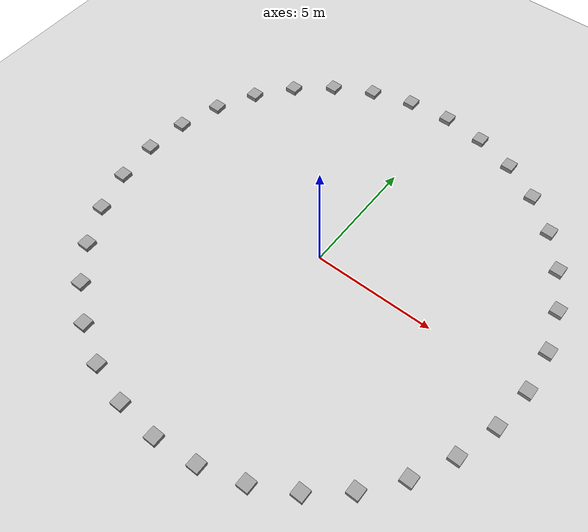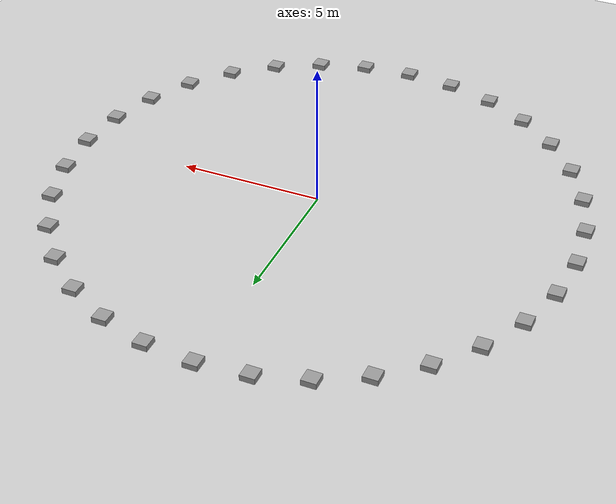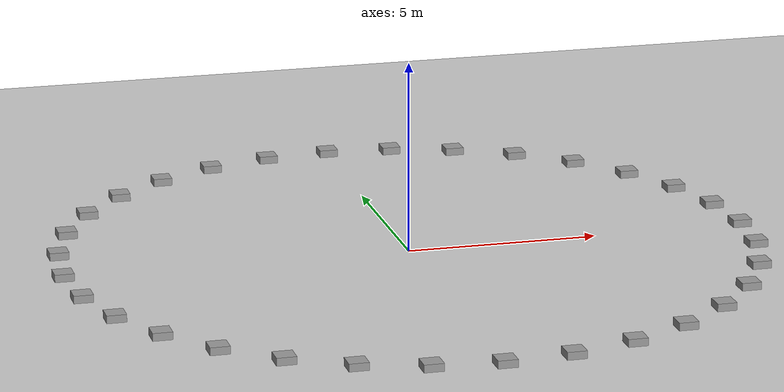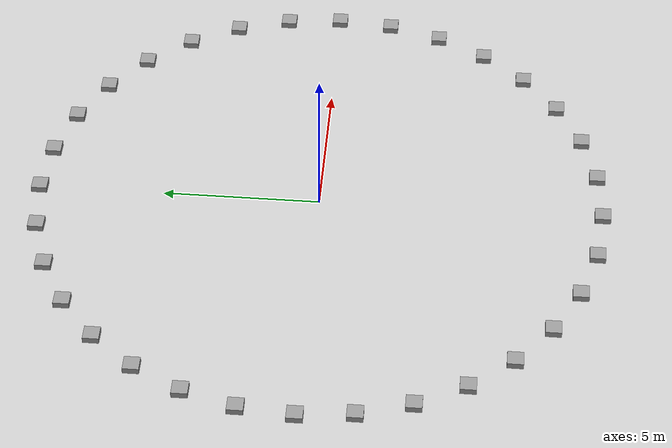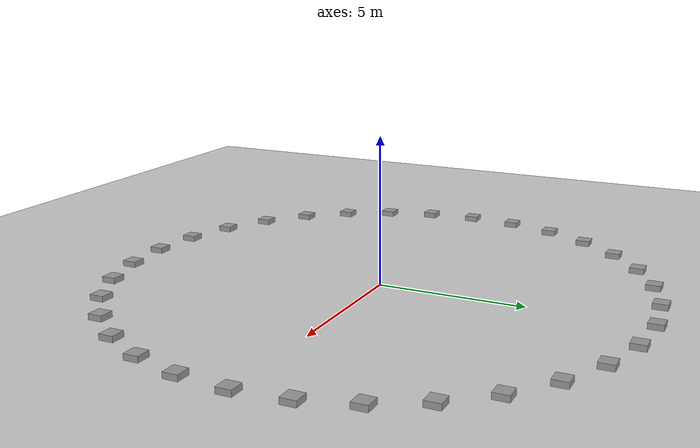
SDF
<?xml version="1.0" ?>
<!-- this file was generated using embedded ruby -->
<sdf version='1.6'>
  <world name='default'>
    <include>
      <uri>model://sun</uri>
    </include>
    <include>
      <uri>model://ground_plane</uri>
    </include>
    <physics type="ode">
      <ode>
        <solver>
          <type>quick</type>
          <iters>50</iters>
          <friction_model>cone_model</friction_model>
        </solver>
      </ode>
    </physics>

    <model name='box_0'>
      <pose>9.0 0.0 0.1 0 -0 0</pose>
      <link name='link_1'>
        <inertial>
          <mass>1</mass>
          <inertia>
            <ixx>0.02416666666666667</ixx>
            <ixy>0</ixy>
            <ixz>0</ixz>
            <iyy>0.02416666666666667</iyy>
            <iyz>0</iyz>
            <izz>0.041666666666666664</izz>
          </inertia>
        </inertial>
        <collision name='collision'>
          <geometry>
            <box>
              <size>0.5 0.5 0.2</size>
            </box>
          </geometry>
          <surface>
            <friction>
              <ode>
                <mu>0.3</mu>
                <mu2>0.3</mu2>
              </ode>
            </friction>
          </surface>
        </collision>
        <visual name='visual'>
          <geometry>
            <box>
              <size>0.5 0.5 0.2</size>
            </box>
          </geometry>
          <material>
            <script>
              <name>Gazebo/Grey</name>
              <uri>file://media/materials/scripts/gazebo.material</uri>
            </script>
          </material>
        </visual>
      </link>
      <plugin name="radial_velocity" filename="libInitialVelocityPlugin.so">
        <linear>9.0 0.0 0</linear>
        <angular>0 0 0</angular>
      </plugin>
    </model>

    <model name='box_1'>
      <pose>8.827067523629074 1.7558128981451542 0.1 0 -0 0</pose>
      <link name='link_1'>
        <inertial>
          <mass>1</mass>
          <inertia>
            <ixx>0.02416666666666667</ixx>
            <ixy>0</ixy>
            <ixz>0</ixz>
            <iyy>0.02416666666666667</iyy>
            <iyz>0</iyz>
            <izz>0.041666666666666664</izz>
          </inertia>
        </inertial>
        <collision name='collision'>
          <geometry>
            <box>
              <size>0.5 0.5 0.2</size>
            </box>
          </geometry>
          <surface>
            <friction>
              <ode>
                <mu>0.3</mu>
                <mu2>0.3</mu2>
              </ode>
            </friction>
          </surface>
        </collision>
        <visual name='visual'>
          <geometry>
            <box>
              <size>0.5 0.5 0.2</size>
            </box>
          </geometry>
          <material>
            <script>
              <name>Gazebo/Grey</name>
              <uri>file://media/materials/scripts/gazebo.material</uri>
            </script>
          </material>
        </visual>
      </link>
      <plugin name="radial_velocity" filename="libInitialVelocityPlugin.so">
        <linear>8.827067523629074 1.7558128981451542 0</linear>
        <angular>0 0 0</angular>
      </plugin>
    </model>

    <model name='box_2'>
      <pose>8.31491579260158 3.444150891285808 0.1 0 -0 0</pose>
      <link name='link_1'>
        <inertial>
          <mass>1</mass>
          <inertia>
            <ixx>0.02416666666666667</ixx>
            <ixy>0</ixy>
            <ixz>0</ixz>
            <iyy>0.02416666666666667</iyy>
            <iyz>0</iyz>
            <izz>0.041666666666666664</izz>
          </inertia>
        </inertial>
        <collision name='collision'>
          <geometry>
            <box>
              <size>0.5 0.5 0.2</size>
            </box>
          </geometry>
          <surface>
            <friction>
              <ode>
                <mu>0.3</mu>
                <mu2>0.3</mu2>
              </ode>
            </friction>
          </surface>
        </collision>
        <visual name='visual'>
          <geometry>
            <box>
              <size>0.5 0.5 0.2</size>
            </box>
          </geometry>
          <material>
            <script>
              <name>Gazebo/Grey</name>
              <uri>file://media/materials/scripts/gazebo.material</uri>
            </script>
          </material>
        </visual>
      </link>
      <plugin name="radial_velocity" filename="libInitialVelocityPlugin.so">
        <linear>8.31491579260158 3.444150891285808 0</linear>
        <angular>0 0 0</angular>
      </plugin>
    </model>

    <model name='box_3'>
      <pose>7.483226510722907 5.00013209717642 0.1 0 -0 0</pose>
      <link name='link_1'>
        <inertial>
          <mass>1</mass>
          <inertia>
            <ixx>0.02416666666666667</ixx>
            <ixy>0</ixy>
            <ixz>0</ixz>
            <iyy>0.02416666666666667</iyy>
            <iyz>0</iyz>
            <izz>0.041666666666666664</izz>
          </inertia>
        </inertial>
        <collision name='collision'>
          <geometry>
            <box>
              <size>0.5 0.5 0.2</size>
            </box>
          </geometry>
          <surface>
            <friction>
              <ode>
                <mu>0.3</mu>
                <mu2>0.3</mu2>
              </ode>
            </friction>
          </surface>
        </collision>
        <visual name='visual'>
          <geometry>
            <box>
              <size>0.5 0.5 0.2</size>
            </box>
          </geometry>
          <material>
            <script>
              <name>Gazebo/Grey</name>
              <uri>file://media/materials/scripts/gazebo.material</uri>
            </script>
          </material>
        </visual>
      </link>
      <plugin name="radial_velocity" filename="libInitialVelocityPlugin.so">
        <linear>7.483226510722907 5.00013209717642 0</linear>
        <angular>0 0 0</angular>
      </plugin>
    </model>

    <model name='box_4'>
      <pose>6.3639610306789285 6.363961030678928 0.1 0 -0 0</pose>
      <link name='link_1'>
        <inertial>
          <mass>1</mass>
          <inertia>
            <ixx>0.02416666666666667</ixx>
            <ixy>0</ixy>
            <ixz>0</ixz>
            <iyy>0.02416666666666667</iyy>
            <iyz>0</iyz>
            <izz>0.041666666666666664</izz>
          </inertia>
        </inertial>
        <collision name='collision'>
          <geometry>
            <box>
              <size>0.5 0.5 0.2</size>
            </box>
          </geometry>
          <surface>
            <friction>
              <ode>
                <mu>0.3</mu>
                <mu2>0.3</mu2>
              </ode>
            </friction>
          </surface>
        </collision>
        <visual name='visual'>
          <geometry>
            <box>
              <size>0.5 0.5 0.2</size>
            </box>
          </geometry>
          <material>
            <script>
              <name>Gazebo/Grey</name>
              <uri>file://media/materials/scripts/gazebo.material</uri>
            </script>
          </material>
        </visual>
      </link>
      <plugin name="radial_velocity" filename="libInitialVelocityPlugin.so">
        <linear>6.3639610306789285 6.363961030678928 0</linear>
        <angular>0 0 0</angular>
      </plugin>
    </model>

    <model name='box_5'>
      <pose>5.0001320971764205 7.483226510722907 0.1 0 -0 0</pose>
      <link name='link_1'>
        <inertial>
          <mass>1</mass>
          <inertia>
            <ixx>0.02416666666666667</ixx>
            <ixy>0</ixy>
            <ixz>0</ixz>
            <iyy>0.02416666666666667</iyy>
            <iyz>0</iyz>
            <izz>0.041666666666666664</izz>
          </inertia>
        </inertial>
        <collision name='collision'>
          <geometry>
            <box>
              <size>0.5 0.5 0.2</size>
            </box>
          </geometry>
          <surface>
            <friction>
              <ode>
                <mu>0.3</mu>
                <mu2>0.3</mu2>
              </ode>
            </friction>
          </surface>
        </collision>
        <visual name='visual'>
          <geometry>
            <box>
              <size>0.5 0.5 0.2</size>
            </box>
          </geometry>
          <material>
            <script>
              <name>Gazebo/Grey</name>
              <uri>file://media/materials/scripts/gazebo.material</uri>
            </script>
          </material>
        </visual>
      </link>
      <plugin name="radial_velocity" filename="libInitialVelocityPlugin.so">
        <linear>5.0001320971764205 7.483226510722907 0</linear>
        <angular>0 0 0</angular>
      </plugin>
    </model>

    <model name='box_6'>
      <pose>3.4441508912858083 8.31491579260158 0.1 0 -0 0</pose>
      <link name='link_1'>
        <inertial>
          <mass>1</mass>
          <inertia>
            <ixx>0.02416666666666667</ixx>
            <ixy>0</ixy>
            <ixz>0</ixz>
            <iyy>0.02416666666666667</iyy>
            <iyz>0</iyz>
            <izz>0.041666666666666664</izz>
          </inertia>
        </inertial>
        <collision name='collision'>
          <geometry>
            <box>
              <size>0.5 0.5 0.2</size>
            </box>
          </geometry>
          <surface>
            <friction>
              <ode>
                <mu>0.3</mu>
                <mu2>0.3</mu2>
              </ode>
            </friction>
          </surface>
        </collision>
        <visual name='visual'>
          <geometry>
            <box>
              <size>0.5 0.5 0.2</size>
            </box>
          </geometry>
          <material>
            <script>
              <name>Gazebo/Grey</name>
              <uri>file://media/materials/scripts/gazebo.material</uri>
            </script>
          </material>
        </visual>
      </link>
      <plugin name="radial_velocity" filename="libInitialVelocityPlugin.so">
        <linear>3.4441508912858083 8.31491579260158 0</linear>
        <angular>0 0 0</angular>
      </plugin>
    </model>

    <model name='box_7'>
      <pose>1.755812898145155 8.827067523629074 0.1 0 -0 0</pose>
      <link name='link_1'>
        <inertial>
          <mass>1</mass>
          <inertia>
            <ixx>0.02416666666666667</ixx>
            <ixy>0</ixy>
            <ixz>0</ixz>
            <iyy>0.02416666666666667</iyy>
            <iyz>0</iyz>
            <izz>0.041666666666666664</izz>
          </inertia>
        </inertial>
        <collision name='collision'>
          <geometry>
            <box>
              <size>0.5 0.5 0.2</size>
            </box>
          </geometry>
          <surface>
            <friction>
              <ode>
                <mu>0.3</mu>
                <mu2>0.3</mu2>
              </ode>
            </friction>
          </surface>
        </collision>
        <visual name='visual'>
          <geometry>
            <box>
              <size>0.5 0.5 0.2</size>
            </box>
          </geometry>
          <material>
            <script>
              <name>Gazebo/Grey</name>
              <uri>file://media/materials/scripts/gazebo.material</uri>
            </script>
          </material>
        </visual>
      </link>
      <plugin name="radial_velocity" filename="libInitialVelocityPlugin.so">
        <linear>1.755812898145155 8.827067523629074 0</linear>
        <angular>0 0 0</angular>
      </plugin>
    </model>

    <model name='box_8'>
      <pose>5.51091059616309e-16 9.0 0.1 0 -0 0</pose>
      <link name='link_1'>
        <inertial>
          <mass>1</mass>
          <inertia>
            <ixx>0.02416666666666667</ixx>
            <ixy>0</ixy>
            <ixz>0</ixz>
            <iyy>0.02416666666666667</iyy>
            <iyz>0</iyz>
            <izz>0.041666666666666664</izz>
          </inertia>
        </inertial>
        <collision name='collision'>
          <geometry>
            <box>
              <size>0.5 0.5 0.2</size>
            </box>
          </geometry>
          <surface>
            <friction>
              <ode>
                <mu>0.3</mu>
                <mu2>0.3</mu2>
              </ode>
            </friction>
          </surface>
        </collision>
        <visual name='visual'>
          <geometry>
            <box>
              <size>0.5 0.5 0.2</size>
            </box>
          </geometry>
          <material>
            <script>
              <name>Gazebo/Grey</name>
              <uri>file://media/materials/scripts/gazebo.material</uri>
            </script>
          </material>
        </visual>
      </link>
      <plugin name="radial_velocity" filename="libInitialVelocityPlugin.so">
        <linear>5.51091059616309e-16 9.0 0</linear>
        <angular>0 0 0</angular>
      </plugin>
    </model>

    <model name='box_9'>
      <pose>-1.7558128981451537 8.827067523629074 0.1 0 -0 0</pose>
      <link name='link_1'>
        <inertial>
          <mass>1</mass>
          <inertia>
            <ixx>0.02416666666666667</ixx>
            <ixy>0</ixy>
            <ixz>0</ixz>
            <iyy>0.02416666666666667</iyy>
            <iyz>0</iyz>
            <izz>0.041666666666666664</izz>
          </inertia>
        </inertial>
        <collision name='collision'>
          <geometry>
            <box>
              <size>0.5 0.5 0.2</size>
            </box>
          </geometry>
          <surface>
            <friction>
              <ode>
                <mu>0.3</mu>
                <mu2>0.3</mu2>
              </ode>
            </friction>
          </surface>
        </collision>
        <visual name='visual'>
          <geometry>
            <box>
              <size>0.5 0.5 0.2</size>
            </box>
          </geometry>
          <material>
            <script>
              <name>Gazebo/Grey</name>
              <uri>file://media/materials/scripts/gazebo.material</uri>
            </script>
          </material>
        </visual>
      </link>
      <plugin name="radial_velocity" filename="libInitialVelocityPlugin.so">
        <linear>-1.7558128981451537 8.827067523629074 0</linear>
        <angular>0 0 0</angular>
      </plugin>
    </model>

    <model name='box_10'>
      <pose>-3.4441508912858074 8.31491579260158 0.1 0 -0 0</pose>
      <link name='link_1'>
        <inertial>
          <mass>1</mass>
          <inertia>
            <ixx>0.02416666666666667</ixx>
            <ixy>0</ixy>
            <ixz>0</ixz>
            <iyy>0.02416666666666667</iyy>
            <iyz>0</iyz>
            <izz>0.041666666666666664</izz>
          </inertia>
        </inertial>
        <collision name='collision'>
          <geometry>
            <box>
              <size>0.5 0.5 0.2</size>
            </box>
          </geometry>
          <surface>
            <friction>
              <ode>
                <mu>0.3</mu>
                <mu2>0.3</mu2>
              </ode>
            </friction>
          </surface>
        </collision>
        <visual name='visual'>
          <geometry>
            <box>
              <size>0.5 0.5 0.2</size>
            </box>
          </geometry>
          <material>
            <script>
              <name>Gazebo/Grey</name>
              <uri>file://media/materials/scripts/gazebo.material</uri>
            </script>
          </material>
        </visual>
      </link>
      <plugin name="radial_velocity" filename="libInitialVelocityPlugin.so">
        <linear>-3.4441508912858074 8.31491579260158 0</linear>
        <angular>0 0 0</angular>
      </plugin>
    </model>

    <model name='box_11'>
      <pose>-5.000132097176418 7.4832265107229095 0.1 0 -0 0</pose>
      <link name='link_1'>
        <inertial>
          <mass>1</mass>
          <inertia>
            <ixx>0.02416666666666667</ixx>
            <ixy>0</ixy>
            <ixz>0</ixz>
            <iyy>0.02416666666666667</iyy>
            <iyz>0</iyz>
            <izz>0.041666666666666664</izz>
          </inertia>
        </inertial>
        <collision name='collision'>
          <geometry>
            <box>
              <size>0.5 0.5 0.2</size>
            </box>
          </geometry>
          <surface>
            <friction>
              <ode>
                <mu>0.3</mu>
                <mu2>0.3</mu2>
              </ode>
            </friction>
          </surface>
        </collision>
        <visual name='visual'>
          <geometry>
            <box>
              <size>0.5 0.5 0.2</size>
            </box>
          </geometry>
          <material>
            <script>
              <name>Gazebo/Grey</name>
              <uri>file://media/materials/scripts/gazebo.material</uri>
            </script>
          </material>
        </visual>
      </link>
      <plugin name="radial_velocity" filename="libInitialVelocityPlugin.so">
        <linear>-5.000132097176418 7.4832265107229095 0</linear>
        <angular>0 0 0</angular>
      </plugin>
    </model>

    <model name='box_12'>
      <pose>-6.363961030678928 6.3639610306789285 0.1 0 -0 0</pose>
      <link name='link_1'>
        <inertial>
          <mass>1</mass>
          <inertia>
            <ixx>0.02416666666666667</ixx>
            <ixy>0</ixy>
            <ixz>0</ixz>
            <iyy>0.02416666666666667</iyy>
            <iyz>0</iyz>
            <izz>0.041666666666666664</izz>
          </inertia>
        </inertial>
        <collision name='collision'>
          <geometry>
            <box>
              <size>0.5 0.5 0.2</size>
            </box>
          </geometry>
          <surface>
            <friction>
              <ode>
                <mu>0.3</mu>
                <mu2>0.3</mu2>
              </ode>
            </friction>
          </surface>
        </collision>
        <visual name='visual'>
          <geometry>
            <box>
              <size>0.5 0.5 0.2</size>
            </box>
          </geometry>
          <material>
            <script>
              <name>Gazebo/Grey</name>
              <uri>file://media/materials/scripts/gazebo.material</uri>
            </script>
          </material>
        </visual>
      </link>
      <plugin name="radial_velocity" filename="libInitialVelocityPlugin.so">
        <linear>-6.363961030678928 6.3639610306789285 0</linear>
        <angular>0 0 0</angular>
      </plugin>
    </model>

    <model name='box_13'>
      <pose>-7.483226510722908 5.00013209717642 0.1 0 -0 0</pose>
      <link name='link_1'>
        <inertial>
          <mass>1</mass>
          <inertia>
            <ixx>0.02416666666666667</ixx>
            <ixy>0</ixy>
            <ixz>0</ixz>
            <iyy>0.02416666666666667</iyy>
            <iyz>0</iyz>
            <izz>0.041666666666666664</izz>
          </inertia>
        </inertial>
        <collision name='collision'>
          <geometry>
            <box>
              <size>0.5 0.5 0.2</size>
            </box>
          </geometry>
          <surface>
            <friction>
              <ode>
                <mu>0.3</mu>
                <mu2>0.3</mu2>
              </ode>
            </friction>
          </surface>
        </collision>
        <visual name='visual'>
          <geometry>
            <box>
              <size>0.5 0.5 0.2</size>
            </box>
          </geometry>
          <material>
            <script>
              <name>Gazebo/Grey</name>
              <uri>file://media/materials/scripts/gazebo.material</uri>
            </script>
          </material>
        </visual>
      </link>
      <plugin name="radial_velocity" filename="libInitialVelocityPlugin.so">
        <linear>-7.483226510722908 5.00013209717642 0</linear>
        <angular>0 0 0</angular>
      </plugin>
    </model>

    <model name='box_14'>
      <pose>-8.31491579260158 3.444150891285809 0.1 0 -0 0</pose>
      <link name='link_1'>
        <inertial>
          <mass>1</mass>
          <inertia>
            <ixx>0.02416666666666667</ixx>
            <ixy>0</ixy>
            <ixz>0</ixz>
            <iyy>0.02416666666666667</iyy>
            <iyz>0</iyz>
            <izz>0.041666666666666664</izz>
          </inertia>
        </inertial>
        <collision name='collision'>
          <geometry>
            <box>
              <size>0.5 0.5 0.2</size>
            </box>
          </geometry>
          <surface>
            <friction>
              <ode>
                <mu>0.3</mu>
                <mu2>0.3</mu2>
              </ode>
            </friction>
          </surface>
        </collision>
        <visual name='visual'>
          <geometry>
            <box>
              <size>0.5 0.5 0.2</size>
            </box>
          </geometry>
          <material>
            <script>
              <name>Gazebo/Grey</name>
              <uri>file://media/materials/scripts/gazebo.material</uri>
            </script>
          </material>
        </visual>
      </link>
      <plugin name="radial_velocity" filename="libInitialVelocityPlugin.so">
        <linear>-8.31491579260158 3.444150891285809 0</linear>
        <angular>0 0 0</angular>
      </plugin>
    </model>

    <model name='box_15'>
      <pose>-8.827067523629074 1.7558128981451575 0.1 0 -0 0</pose>
      <link name='link_1'>
        <inertial>
          <mass>1</mass>
          <inertia>
            <ixx>0.02416666666666667</ixx>
            <ixy>0</ixy>
            <ixz>0</ixz>
            <iyy>0.02416666666666667</iyy>
            <iyz>0</iyz>
            <izz>0.041666666666666664</izz>
          </inertia>
        </inertial>
        <collision name='collision'>
          <geometry>
            <box>
              <size>0.5 0.5 0.2</size>
            </box>
          </geometry>
          <surface>
            <friction>
              <ode>
                <mu>0.3</mu>
                <mu2>0.3</mu2>
              </ode>
            </friction>
          </surface>
        </collision>
        <visual name='visual'>
          <geometry>
            <box>
              <size>0.5 0.5 0.2</size>
            </box>
          </geometry>
          <material>
            <script>
              <name>Gazebo/Grey</name>
              <uri>file://media/materials/scripts/gazebo.material</uri>
            </script>
          </material>
        </visual>
      </link>
      <plugin name="radial_velocity" filename="libInitialVelocityPlugin.so">
        <linear>-8.827067523629074 1.7558128981451575 0</linear>
        <angular>0 0 0</angular>
      </plugin>
    </model>

    <model name='box_16'>
      <pose>-9.0 1.102182119232618e-15 0.1 0 -0 0</pose>
      <link name='link_1'>
        <inertial>
          <mass>1</mass>
          <inertia>
            <ixx>0.02416666666666667</ixx>
            <ixy>0</ixy>
            <ixz>0</ixz>
            <iyy>0.02416666666666667</iyy>
            <iyz>0</iyz>
            <izz>0.041666666666666664</izz>
          </inertia>
        </inertial>
        <collision name='collision'>
          <geometry>
            <box>
              <size>0.5 0.5 0.2</size>
            </box>
          </geometry>
          <surface>
            <friction>
              <ode>
                <mu>0.3</mu>
                <mu2>0.3</mu2>
              </ode>
            </friction>
          </surface>
        </collision>
        <visual name='visual'>
          <geometry>
            <box>
              <size>0.5 0.5 0.2</size>
            </box>
          </geometry>
          <material>
            <script>
              <name>Gazebo/Grey</name>
              <uri>file://media/materials/scripts/gazebo.material</uri>
            </script>
          </material>
        </visual>
      </link>
      <plugin name="radial_velocity" filename="libInitialVelocityPlugin.so">
        <linear>-9.0 1.102182119232618e-15 0</linear>
        <angular>0 0 0</angular>
      </plugin>
    </model>

    <model name='box_17'>
      <pose>-8.827067523629074 -1.7558128981451553 0.1 0 -0 0</pose>
      <link name='link_1'>
        <inertial>
          <mass>1</mass>
          <inertia>
            <ixx>0.02416666666666667</ixx>
            <ixy>0</ixy>
            <ixz>0</ixz>
            <iyy>0.02416666666666667</iyy>
            <iyz>0</iyz>
            <izz>0.041666666666666664</izz>
          </inertia>
        </inertial>
        <collision name='collision'>
          <geometry>
            <box>
              <size>0.5 0.5 0.2</size>
            </box>
          </geometry>
          <surface>
            <friction>
              <ode>
                <mu>0.3</mu>
                <mu2>0.3</mu2>
              </ode>
            </friction>
          </surface>
        </collision>
        <visual name='visual'>
          <geometry>
            <box>
              <size>0.5 0.5 0.2</size>
            </box>
          </geometry>
          <material>
            <script>
              <name>Gazebo/Grey</name>
              <uri>file://media/materials/scripts/gazebo.material</uri>
            </script>
          </material>
        </visual>
      </link>
      <plugin name="radial_velocity" filename="libInitialVelocityPlugin.so">
        <linear>-8.827067523629074 -1.7558128981451553 0</linear>
        <angular>0 0 0</angular>
      </plugin>
    </model>

    <model name='box_18'>
      <pose>-8.314915792601582 -3.444150891285807 0.1 0 -0 0</pose>
      <link name='link_1'>
        <inertial>
          <mass>1</mass>
          <inertia>
            <ixx>0.02416666666666667</ixx>
            <ixy>0</ixy>
            <ixz>0</ixz>
            <iyy>0.02416666666666667</iyy>
            <iyz>0</iyz>
            <izz>0.041666666666666664</izz>
          </inertia>
        </inertial>
        <collision name='collision'>
          <geometry>
            <box>
              <size>0.5 0.5 0.2</size>
            </box>
          </geometry>
          <surface>
            <friction>
              <ode>
                <mu>0.3</mu>
                <mu2>0.3</mu2>
              </ode>
            </friction>
          </surface>
        </collision>
        <visual name='visual'>
          <geometry>
            <box>
              <size>0.5 0.5 0.2</size>
            </box>
          </geometry>
          <material>
            <script>
              <name>Gazebo/Grey</name>
              <uri>file://media/materials/scripts/gazebo.material</uri>
            </script>
          </material>
        </visual>
      </link>
      <plugin name="radial_velocity" filename="libInitialVelocityPlugin.so">
        <linear>-8.314915792601582 -3.444150891285807 0</linear>
        <angular>0 0 0</angular>
      </plugin>
    </model>

    <model name='box_19'>
      <pose>-7.4832265107229095 -5.000132097176418 0.1 0 -0 0</pose>
      <link name='link_1'>
        <inertial>
          <mass>1</mass>
          <inertia>
            <ixx>0.02416666666666667</ixx>
            <ixy>0</ixy>
            <ixz>0</ixz>
            <iyy>0.02416666666666667</iyy>
            <iyz>0</iyz>
            <izz>0.041666666666666664</izz>
          </inertia>
        </inertial>
        <collision name='collision'>
          <geometry>
            <box>
              <size>0.5 0.5 0.2</size>
            </box>
          </geometry>
          <surface>
            <friction>
              <ode>
                <mu>0.3</mu>
                <mu2>0.3</mu2>
              </ode>
            </friction>
          </surface>
        </collision>
        <visual name='visual'>
          <geometry>
            <box>
              <size>0.5 0.5 0.2</size>
            </box>
          </geometry>
          <material>
            <script>
              <name>Gazebo/Grey</name>
              <uri>file://media/materials/scripts/gazebo.material</uri>
            </script>
          </material>
        </visual>
      </link>
      <plugin name="radial_velocity" filename="libInitialVelocityPlugin.so">
        <linear>-7.4832265107229095 -5.000132097176418 0</linear>
        <angular>0 0 0</angular>
      </plugin>
    </model>

    <model name='box_20'>
      <pose>-6.363961030678929 -6.363961030678928 0.1 0 -0 0</pose>
      <link name='link_1'>
        <inertial>
          <mass>1</mass>
          <inertia>
            <ixx>0.02416666666666667</ixx>
            <ixy>0</ixy>
            <ixz>0</ixz>
            <iyy>0.02416666666666667</iyy>
            <iyz>0</iyz>
            <izz>0.041666666666666664</izz>
          </inertia>
        </inertial>
        <collision name='collision'>
          <geometry>
            <box>
              <size>0.5 0.5 0.2</size>
            </box>
          </geometry>
          <surface>
            <friction>
              <ode>
                <mu>0.3</mu>
                <mu2>0.3</mu2>
              </ode>
            </friction>
          </surface>
        </collision>
        <visual name='visual'>
          <geometry>
            <box>
              <size>0.5 0.5 0.2</size>
            </box>
          </geometry>
          <material>
            <script>
              <name>Gazebo/Grey</name>
              <uri>file://media/materials/scripts/gazebo.material</uri>
            </script>
          </material>
        </visual>
      </link>
      <plugin name="radial_velocity" filename="libInitialVelocityPlugin.so">
        <linear>-6.363961030678929 -6.363961030678928 0</linear>
        <angular>0 0 0</angular>
      </plugin>
    </model>

    <model name='box_21'>
      <pose>-5.00013209717642 -7.483226510722907 0.1 0 -0 0</pose>
      <link name='link_1'>
        <inertial>
          <mass>1</mass>
          <inertia>
            <ixx>0.02416666666666667</ixx>
            <ixy>0</ixy>
            <ixz>0</ixz>
            <iyy>0.02416666666666667</iyy>
            <iyz>0</iyz>
            <izz>0.041666666666666664</izz>
          </inertia>
        </inertial>
        <collision name='collision'>
          <geometry>
            <box>
              <size>0.5 0.5 0.2</size>
            </box>
          </geometry>
          <surface>
            <friction>
              <ode>
                <mu>0.3</mu>
                <mu2>0.3</mu2>
              </ode>
            </friction>
          </surface>
        </collision>
        <visual name='visual'>
          <geometry>
            <box>
              <size>0.5 0.5 0.2</size>
            </box>
          </geometry>
          <material>
            <script>
              <name>Gazebo/Grey</name>
              <uri>file://media/materials/scripts/gazebo.material</uri>
            </script>
          </material>
        </visual>
      </link>
      <plugin name="radial_velocity" filename="libInitialVelocityPlugin.so">
        <linear>-5.00013209717642 -7.483226510722907 0</linear>
        <angular>0 0 0</angular>
      </plugin>
    </model>

    <model name='box_22'>
      <pose>-3.444150891285813 -8.314915792601578 0.1 0 -0 0</pose>
      <link name='link_1'>
        <inertial>
          <mass>1</mass>
          <inertia>
            <ixx>0.02416666666666667</ixx>
            <ixy>0</ixy>
            <ixz>0</ixz>
            <iyy>0.02416666666666667</iyy>
            <iyz>0</iyz>
            <izz>0.041666666666666664</izz>
          </inertia>
        </inertial>
        <collision name='collision'>
          <geometry>
            <box>
              <size>0.5 0.5 0.2</size>
            </box>
          </geometry>
          <surface>
            <friction>
              <ode>
                <mu>0.3</mu>
                <mu2>0.3</mu2>
              </ode>
            </friction>
          </surface>
        </collision>
        <visual name='visual'>
          <geometry>
            <box>
              <size>0.5 0.5 0.2</size>
            </box>
          </geometry>
          <material>
            <script>
              <name>Gazebo/Grey</name>
              <uri>file://media/materials/scripts/gazebo.material</uri>
            </script>
          </material>
        </visual>
      </link>
      <plugin name="radial_velocity" filename="libInitialVelocityPlugin.so">
        <linear>-3.444150891285813 -8.314915792601578 0</linear>
        <angular>0 0 0</angular>
      </plugin>
    </model>

    <model name='box_23'>
      <pose>-1.755812898145158 -8.827067523629072 0.1 0 -0 0</pose>
      <link name='link_1'>
        <inertial>
          <mass>1</mass>
          <inertia>
            <ixx>0.02416666666666667</ixx>
            <ixy>0</ixy>
            <ixz>0</ixz>
            <iyy>0.02416666666666667</iyy>
            <iyz>0</iyz>
            <izz>0.041666666666666664</izz>
          </inertia>
        </inertial>
        <collision name='collision'>
          <geometry>
            <box>
              <size>0.5 0.5 0.2</size>
            </box>
          </geometry>
          <surface>
            <friction>
              <ode>
                <mu>0.3</mu>
                <mu2>0.3</mu2>
              </ode>
            </friction>
          </surface>
        </collision>
        <visual name='visual'>
          <geometry>
            <box>
              <size>0.5 0.5 0.2</size>
            </box>
          </geometry>
          <material>
            <script>
              <name>Gazebo/Grey</name>
              <uri>file://media/materials/scripts/gazebo.material</uri>
            </script>
          </material>
        </visual>
      </link>
      <plugin name="radial_velocity" filename="libInitialVelocityPlugin.so">
        <linear>-1.755812898145158 -8.827067523629072 0</linear>
        <angular>0 0 0</angular>
      </plugin>
    </model>

    <model name='box_24'>
      <pose>-1.6532731788489267e-15 -9.0 0.1 0 -0 0</pose>
      <link name='link_1'>
        <inertial>
          <mass>1</mass>
          <inertia>
            <ixx>0.02416666666666667</ixx>
            <ixy>0</ixy>
            <ixz>0</ixz>
            <iyy>0.02416666666666667</iyy>
            <iyz>0</iyz>
            <izz>0.041666666666666664</izz>
          </inertia>
        </inertial>
        <collision name='collision'>
          <geometry>
            <box>
              <size>0.5 0.5 0.2</size>
            </box>
          </geometry>
          <surface>
            <friction>
              <ode>
                <mu>0.3</mu>
                <mu2>0.3</mu2>
              </ode>
            </friction>
          </surface>
        </collision>
        <visual name='visual'>
          <geometry>
            <box>
              <size>0.5 0.5 0.2</size>
            </box>
          </geometry>
          <material>
            <script>
              <name>Gazebo/Grey</name>
              <uri>file://media/materials/scripts/gazebo.material</uri>
            </script>
          </material>
        </visual>
      </link>
      <plugin name="radial_velocity" filename="libInitialVelocityPlugin.so">
        <linear>-1.6532731788489267e-15 -9.0 0</linear>
        <angular>0 0 0</angular>
      </plugin>
    </model>

    <model name='box_25'>
      <pose>1.7558128981451548 -8.827067523629074 0.1 0 -0 0</pose>
      <link name='link_1'>
        <inertial>
          <mass>1</mass>
          <inertia>
            <ixx>0.02416666666666667</ixx>
            <ixy>0</ixy>
            <ixz>0</ixz>
            <iyy>0.02416666666666667</iyy>
            <iyz>0</iyz>
            <izz>0.041666666666666664</izz>
          </inertia>
        </inertial>
        <collision name='collision'>
          <geometry>
            <box>
              <size>0.5 0.5 0.2</size>
            </box>
          </geometry>
          <surface>
            <friction>
              <ode>
                <mu>0.3</mu>
                <mu2>0.3</mu2>
              </ode>
            </friction>
          </surface>
        </collision>
        <visual name='visual'>
          <geometry>
            <box>
              <size>0.5 0.5 0.2</size>
            </box>
          </geometry>
          <material>
            <script>
              <name>Gazebo/Grey</name>
              <uri>file://media/materials/scripts/gazebo.material</uri>
            </script>
          </material>
        </visual>
      </link>
      <plugin name="radial_velocity" filename="libInitialVelocityPlugin.so">
        <linear>1.7558128981451548 -8.827067523629074 0</linear>
        <angular>0 0 0</angular>
      </plugin>
    </model>

    <model name='box_26'>
      <pose>3.44415089128581 -8.31491579260158 0.1 0 -0 0</pose>
      <link name='link_1'>
        <inertial>
          <mass>1</mass>
          <inertia>
            <ixx>0.02416666666666667</ixx>
            <ixy>0</ixy>
            <ixz>0</ixz>
            <iyy>0.02416666666666667</iyy>
            <iyz>0</iyz>
            <izz>0.041666666666666664</izz>
          </inertia>
        </inertial>
        <collision name='collision'>
          <geometry>
            <box>
              <size>0.5 0.5 0.2</size>
            </box>
          </geometry>
          <surface>
            <friction>
              <ode>
                <mu>0.3</mu>
                <mu2>0.3</mu2>
              </ode>
            </friction>
          </surface>
        </collision>
        <visual name='visual'>
          <geometry>
            <box>
              <size>0.5 0.5 0.2</size>
            </box>
          </geometry>
          <material>
            <script>
              <name>Gazebo/Grey</name>
              <uri>file://media/materials/scripts/gazebo.material</uri>
            </script>
          </material>
        </visual>
      </link>
      <plugin name="radial_velocity" filename="libInitialVelocityPlugin.so">
        <linear>3.44415089128581 -8.31491579260158 0</linear>
        <angular>0 0 0</angular>
      </plugin>
    </model>

    <model name='box_27'>
      <pose>5.000132097176417 -7.4832265107229095 0.1 0 -0 0</pose>
      <link name='link_1'>
        <inertial>
          <mass>1</mass>
          <inertia>
            <ixx>0.02416666666666667</ixx>
            <ixy>0</ixy>
            <ixz>0</ixz>
            <iyy>0.02416666666666667</iyy>
            <iyz>0</iyz>
            <izz>0.041666666666666664</izz>
          </inertia>
        </inertial>
        <collision name='collision'>
          <geometry>
            <box>
              <size>0.5 0.5 0.2</size>
            </box>
          </geometry>
          <surface>
            <friction>
              <ode>
                <mu>0.3</mu>
                <mu2>0.3</mu2>
              </ode>
            </friction>
          </surface>
        </collision>
        <visual name='visual'>
          <geometry>
            <box>
              <size>0.5 0.5 0.2</size>
            </box>
          </geometry>
          <material>
            <script>
              <name>Gazebo/Grey</name>
              <uri>file://media/materials/scripts/gazebo.material</uri>
            </script>
          </material>
        </visual>
      </link>
      <plugin name="radial_velocity" filename="libInitialVelocityPlugin.so">
        <linear>5.000132097176417 -7.4832265107229095 0</linear>
        <angular>0 0 0</angular>
      </plugin>
    </model>

    <model name='box_28'>
      <pose>6.363961030678926 -6.363961030678929 0.1 0 -0 0</pose>
      <link name='link_1'>
        <inertial>
          <mass>1</mass>
          <inertia>
            <ixx>0.02416666666666667</ixx>
            <ixy>0</ixy>
            <ixz>0</ixz>
            <iyy>0.02416666666666667</iyy>
            <iyz>0</iyz>
            <izz>0.041666666666666664</izz>
          </inertia>
        </inertial>
        <collision name='collision'>
          <geometry>
            <box>
              <size>0.5 0.5 0.2</size>
            </box>
          </geometry>
          <surface>
            <friction>
              <ode>
                <mu>0.3</mu>
                <mu2>0.3</mu2>
              </ode>
            </friction>
          </surface>
        </collision>
        <visual name='visual'>
          <geometry>
            <box>
              <size>0.5 0.5 0.2</size>
            </box>
          </geometry>
          <material>
            <script>
              <name>Gazebo/Grey</name>
              <uri>file://media/materials/scripts/gazebo.material</uri>
            </script>
          </material>
        </visual>
      </link>
      <plugin name="radial_velocity" filename="libInitialVelocityPlugin.so">
        <linear>6.363961030678926 -6.363961030678929 0</linear>
        <angular>0 0 0</angular>
      </plugin>
    </model>

    <model name='box_29'>
      <pose>7.483226510722907 -5.00013209717642 0.1 0 -0 0</pose>
      <link name='link_1'>
        <inertial>
          <mass>1</mass>
          <inertia>
            <ixx>0.02416666666666667</ixx>
            <ixy>0</ixy>
            <ixz>0</ixz>
            <iyy>0.02416666666666667</iyy>
            <iyz>0</iyz>
            <izz>0.041666666666666664</izz>
          </inertia>
        </inertial>
        <collision name='collision'>
          <geometry>
            <box>
              <size>0.5 0.5 0.2</size>
            </box>
          </geometry>
          <surface>
            <friction>
              <ode>
                <mu>0.3</mu>
                <mu2>0.3</mu2>
              </ode>
            </friction>
          </surface>
        </collision>
        <visual name='visual'>
          <geometry>
            <box>
              <size>0.5 0.5 0.2</size>
            </box>
          </geometry>
          <material>
            <script>
              <name>Gazebo/Grey</name>
              <uri>file://media/materials/scripts/gazebo.material</uri>
            </script>
          </material>
        </visual>
      </link>
      <plugin name="radial_velocity" filename="libInitialVelocityPlugin.so">
        <linear>7.483226510722907 -5.00013209717642 0</linear>
        <angular>0 0 0</angular>
      </plugin>
    </model>

    <model name='box_30'>
      <pose>8.314915792601578 -3.4441508912858136 0.1 0 -0 0</pose>
      <link name='link_1'>
        <inertial>
          <mass>1</mass>
          <inertia>
            <ixx>0.02416666666666667</ixx>
            <ixy>0</ixy>
            <ixz>0</ixz>
            <iyy>0.02416666666666667</iyy>
            <iyz>0</iyz>
            <izz>0.041666666666666664</izz>
          </inertia>
        </inertial>
        <collision name='collision'>
          <geometry>
            <box>
              <size>0.5 0.5 0.2</size>
            </box>
          </geometry>
          <surface>
            <friction>
              <ode>
                <mu>0.3</mu>
                <mu2>0.3</mu2>
              </ode>
            </friction>
          </surface>
        </collision>
        <visual name='visual'>
          <geometry>
            <box>
              <size>0.5 0.5 0.2</size>
            </box>
          </geometry>
          <material>
            <script>
              <name>Gazebo/Grey</name>
              <uri>file://media/materials/scripts/gazebo.material</uri>
            </script>
          </material>
        </visual>
      </link>
      <plugin name="radial_velocity" filename="libInitialVelocityPlugin.so">
        <linear>8.314915792601578 -3.4441508912858136 0</linear>
        <angular>0 0 0</angular>
      </plugin>
    </model>

    <model name='box_31'>
      <pose>8.827067523629072 -1.7558128981451584 0.1 0 -0 0</pose>
      <link name='link_1'>
        <inertial>
          <mass>1</mass>
          <inertia>
            <ixx>0.02416666666666667</ixx>
            <ixy>0</ixy>
            <ixz>0</ixz>
            <iyy>0.02416666666666667</iyy>
            <iyz>0</iyz>
            <izz>0.041666666666666664</izz>
          </inertia>
        </inertial>
        <collision name='collision'>
          <geometry>
            <box>
              <size>0.5 0.5 0.2</size>
            </box>
          </geometry>
          <surface>
            <friction>
              <ode>
                <mu>0.3</mu>
                <mu2>0.3</mu2>
              </ode>
            </friction>
          </surface>
        </collision>
        <visual name='visual'>
          <geometry>
            <box>
              <size>0.5 0.5 0.2</size>
            </box>
          </geometry>
          <material>
            <script>
              <name>Gazebo/Grey</name>
              <uri>file://media/materials/scripts/gazebo.material</uri>
            </script>
          </material>
        </visual>
      </link>
      <plugin name="radial_velocity" filename="libInitialVelocityPlugin.so">
        <linear>8.827067523629072 -1.7558128981451584 0</linear>
        <angular>0 0 0</angular>
      </plugin>
    </model>

    <gui fullscreen='0'>
      <camera name='user_camera'>
        <pose>-0.93396 -19.9626 11.7572 0 0.503643 1.6562</pose>
        <view_controller>orbit</view_controller>
        <projection_type>perspective</projection_type>
      </camera>
    </gui>
  </world>
</sdf>
